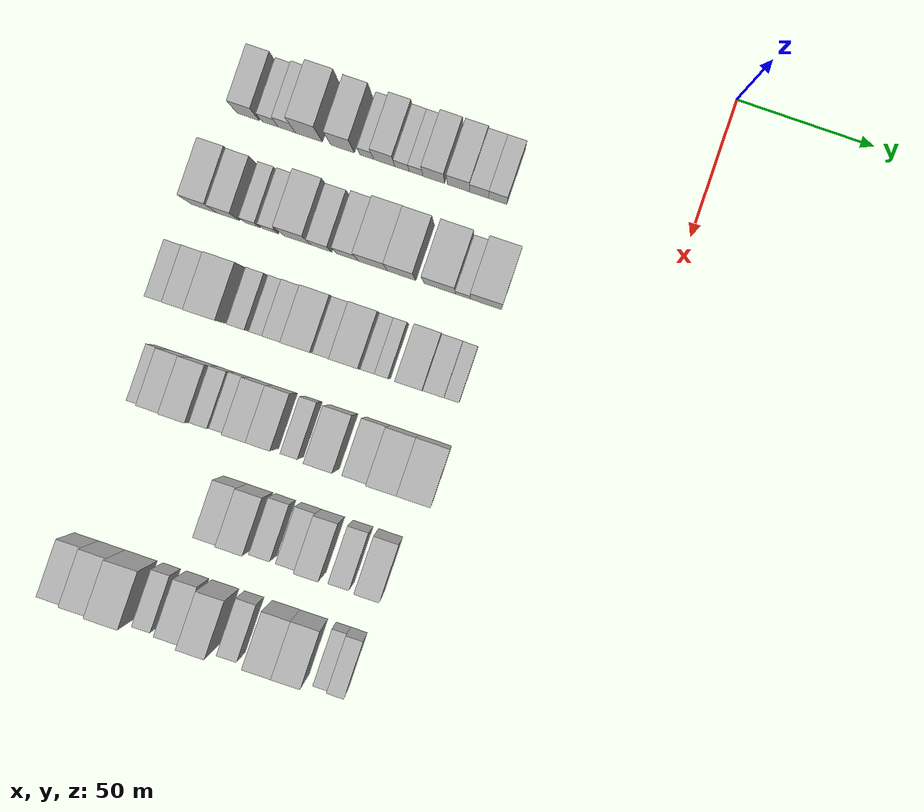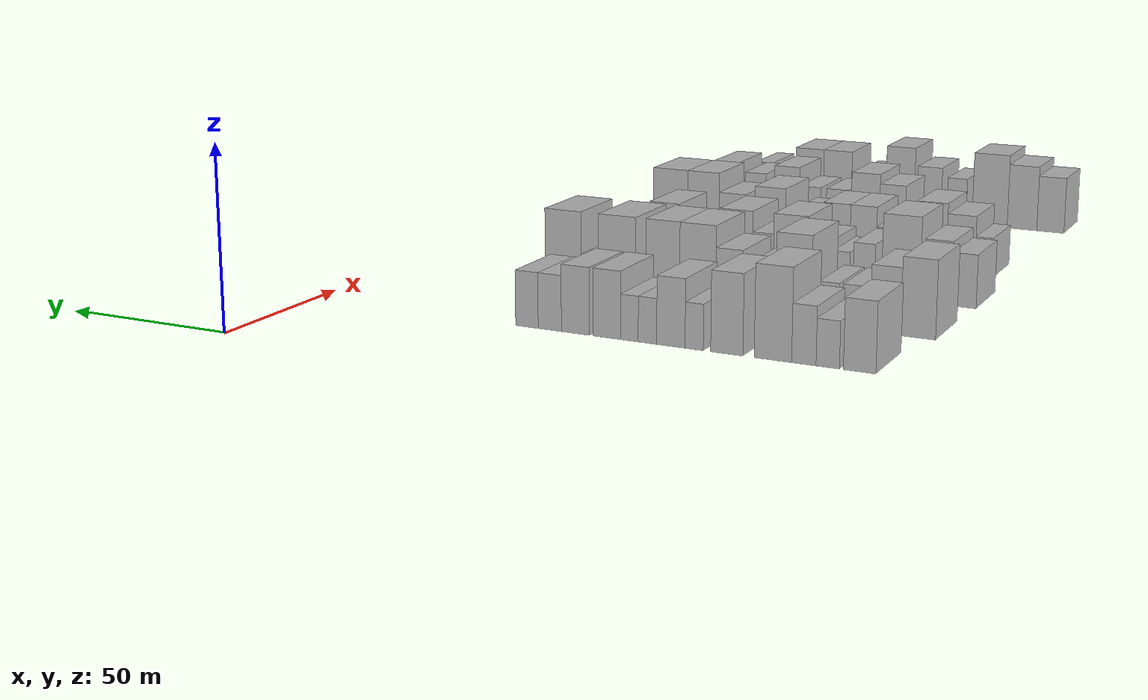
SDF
<sdf version="1.6">
 <world name="default">
  <model name="building_45">
   <static>1</static>
   <pose>50.0000 -158.2272 0 0.000000 0.000000 0.000000</pose>
   <link name="link">
    <pose>0 0 9.00 0 0 0</pose>
    <collision name="collision"><geometry><box><size>20.0000 8.1649 18.0000</size></box></geometry></collision>
    <visual name="visual">
     <cast_shadows>0</cast_shadows>
     <geometry><box><size>20.0000 8.1649 18.0000</size></box></geometry>
     <material>
      <script>
       <uri>model://HANNAS_wall/materials/scripts</uri>
       <uri>model://HANNAS_wall/materials/textures</uri>
       <name>vrc/HANNAS_wall</name>
      </script>
     </material>
    </visual>
   </link>
  </model>
  <model name="building_46">
   <static>1</static>
   <pose>50.0000 -150.1552 0 0.000000 0.000000 0.000000</pose>
   <link name="link">
    <pose>0 0 6.00 0 0 0</pose>
    <collision name="collision"><geometry><box><size>20.0000 5.9791 12.0000</size></box></geometry></collision>
    <visual name="visual">
     <cast_shadows>0</cast_shadows>
     <geometry><box><size>20.0000 5.9791 12.0000</size></box></geometry>
     <material>
      <script>
       <uri>model://HANNAS_wall/materials/scripts</uri>
       <uri>model://HANNAS_wall/materials/textures</uri>
       <name>vrc/HANNAS_wall</name>
      </script>
     </material>
    </visual>
   </link>
  </model>
  <model name="building_47">
   <static>1</static>
   <pose>50.0000 -144.0159 0 0.000000 0.000000 0.000000</pose>
   <link name="link">
    <pose>0 0 7.50 0 0 0</pose>
    <collision name="collision"><geometry><box><size>20.0000 6.2995 15.0000</size></box></geometry></collision>
    <visual name="visual">
     <cast_shadows>0</cast_shadows>
     <geometry><box><size>20.0000 6.2995 15.0000</size></box></geometry>
     <material>
      <script>
       <uri>model://HANNAS_wall/materials/scripts</uri>
       <uri>model://HANNAS_wall/materials/textures</uri>
       <name>vrc/HANNAS_wall</name>
      </script>
     </material>
    </visual>
   </link>
  </model>
  <model name="building_48">
   <static>1</static>
   <pose>50.0000 -135.9513 0 0.000000 0.000000 0.000000</pose>
   <link name="link">
    <pose>0 0 12.00 0 0 0</pose>
    <collision name="collision"><geometry><box><size>20.0000 9.8298 24.0000</size></box></geometry></collision>
    <visual name="visual">
     <cast_shadows>0</cast_shadows>
     <geometry><box><size>20.0000 9.8298 24.0000</size></box></geometry>
     <material>
      <script>
       <uri>model://HANNAS_wall/materials/scripts</uri>
       <uri>model://HANNAS_wall/materials/textures</uri>
       <name>vrc/HANNAS_wall</name>
      </script>
     </material>
    </visual>
   </link>
  </model>
  <model name="building_49">
   <static>1</static>
   <pose>50.0000 -123.6992 0 0.000000 0.000000 0.000000</pose>
   <link name="link">
    <pose>0 0 10.50 0 0 0</pose>
    <collision name="collision"><geometry><box><size>20.0000 8.6744 21.0000</size></box></geometry></collision>
    <visual name="visual">
     <cast_shadows>0</cast_shadows>
     <geometry><box><size>20.0000 8.6744 21.0000</size></box></geometry>
     <material>
      <script>
       <uri>model://HANNAS_wall/materials/scripts</uri>
       <uri>model://HANNAS_wall/materials/textures</uri>
       <name>vrc/HANNAS_wall</name>
      </script>
     </material>
    </visual>
   </link>
  </model>
  <model name="building_50">
   <static>1</static>
   <pose>50.0000 -114.8754 0 0.000000 0.000000 0.000000</pose>
   <link name="link">
    <pose>0 0 6.00 0 0 0</pose>
    <collision name="collision"><geometry><box><size>20.0000 4.9731 12.0000</size></box></geometry></collision>
    <visual name="visual">
     <cast_shadows>0</cast_shadows>
     <geometry><box><size>20.0000 4.9731 12.0000</size></box></geometry>
     <material>
      <script>
       <uri>model://HANNAS_wall/materials/scripts</uri>
       <uri>model://HANNAS_wall/materials/textures</uri>
       <name>vrc/HANNAS_wall</name>
      </script>
     </material>
    </visual>
   </link>
  </model>
  <model name="building_51">
   <static>1</static>
   <pose>50.0000 -108.4652 0 0.000000 0.000000 0.000000</pose>
   <link name="link">
    <pose>0 0 9.00 0 0 0</pose>
    <collision name="collision"><geometry><box><size>20.0000 7.8473 18.0000</size></box></geometry></collision>
    <visual name="visual">
     <cast_shadows>0</cast_shadows>
     <geometry><box><size>20.0000 7.8473 18.0000</size></box></geometry>
     <material>
      <script>
       <uri>model://HANNAS_wall/materials/scripts</uri>
       <uri>model://HANNAS_wall/materials/textures</uri>
       <name>vrc/HANNAS_wall</name>
      </script>
     </material>
    </visual>
   </link>
  </model>
  <model name="building_52">
   <static>1</static>
   <pose>50.0000 -101.9487 0 0.000000 0.000000 0.000000</pose>
   <link name="link">
    <pose>0 0 6.00 0 0 0</pose>
    <collision name="collision"><geometry><box><size>20.0000 5.1858 12.0000</size></box></geometry></collision>
    <visual name="visual">
     <cast_shadows>0</cast_shadows>
     <geometry><box><size>20.0000 5.1858 12.0000</size></box></geometry>
     <material>
      <script>
       <uri>model://HANNAS_wall/materials/scripts</uri>
       <uri>model://HANNAS_wall/materials/textures</uri>
       <name>vrc/HANNAS_wall</name>
      </script>
     </material>
    </visual>
   </link>
  </model>
  <model name="building_53">
   <static>1</static>
   <pose>50.0000 -96.8588 0 0.000000 0.000000 0.000000</pose>
   <link name="link">
    <pose>0 0 6.00 0 0 0</pose>
    <collision name="collision"><geometry><box><size>20.0000 4.9940 12.0000</size></box></geometry></collision>
    <visual name="visual">
     <cast_shadows>0</cast_shadows>
     <geometry><box><size>20.0000 4.9940 12.0000</size></box></geometry>
     <material>
      <script>
       <uri>model://HANNAS_wall/materials/scripts</uri>
       <uri>model://HANNAS_wall/materials/textures</uri>
       <name>vrc/HANNAS_wall</name>
      </script>
     </material>
    </visual>
   </link>
  </model>
  <model name="building_54">
   <static>1</static>
   <pose>50.0000 -90.4018 0 0.000000 0.000000 0.000000</pose>
   <link name="link">
    <pose>0 0 9.00 0 0 0</pose>
    <collision name="collision"><geometry><box><size>20.0000 7.9199 18.0000</size></box></geometry></collision>
    <visual name="visual">
     <cast_shadows>0</cast_shadows>
     <geometry><box><size>20.0000 7.9199 18.0000</size></box></geometry>
     <material>
      <script>
       <uri>model://HANNAS_wall/materials/scripts</uri>
       <uri>model://HANNAS_wall/materials/textures</uri>
       <name>vrc/HANNAS_wall</name>
      </script>
     </material>
    </visual>
   </link>
  </model>
  <model name="building_55">
   <static>1</static>
   <pose>50.0000 -81.3770 0 0.000000 0.000000 0.000000</pose>
   <link name="link">
    <pose>0 0 9.00 0 0 0</pose>
    <collision name="collision"><geometry><box><size>20.0000 8.1297 18.0000</size></box></geometry></collision>
    <visual name="visual">
     <cast_shadows>0</cast_shadows>
     <geometry><box><size>20.0000 8.1297 18.0000</size></box></geometry>
     <material>
      <script>
       <uri>model://HANNAS_wall/materials/scripts</uri>
       <uri>model://HANNAS_wall/materials/textures</uri>
       <name>vrc/HANNAS_wall</name>
      </script>
     </material>
    </visual>
   </link>
  </model>
  <model name="building_56">
   <static>1</static>
   <pose>50.0000 -73.8856 0 0.000000 0.000000 0.000000</pose>
   <link name="link">
    <pose>0 0 7.50 0 0 0</pose>
    <collision name="collision"><geometry><box><size>20.0000 6.8532 15.0000</size></box></geometry></collision>
    <visual name="visual">
     <cast_shadows>0</cast_shadows>
     <geometry><box><size>20.0000 6.8532 15.0000</size></box></geometry>
     <material>
      <script>
       <uri>model://HANNAS_wall/materials/scripts</uri>
       <uri>model://HANNAS_wall/materials/textures</uri>
       <name>vrc/HANNAS_wall</name>
      </script>
     </material>
    </visual>
   </link>
  </model>
  <model name="building_57">
   <static>1</static>
   <pose>50.0000 -67.1089 0 0.000000 0.000000 0.000000</pose>
   <link name="link">
    <pose>0 0 7.50 0 0 0</pose>
    <collision name="collision"><geometry><box><size>20.0000 6.7001 15.0000</size></box></geometry></collision>
    <visual name="visual">
     <cast_shadows>0</cast_shadows>
     <geometry><box><size>20.0000 6.7001 15.0000</size></box></geometry>
     <material>
      <script>
       <uri>model://HANNAS_wall/materials/scripts</uri>
       <uri>model://HANNAS_wall/materials/textures</uri>
       <name>vrc/HANNAS_wall</name>
      </script>
     </material>
    </visual>
   </link>
  </model>
  <model name="building_173">
   <static>1</static>
   <pose>85.0000 -162.1228 0 0.000000 0.000000 0.000000</pose>
   <link name="link">
    <pose>0 0 10.50 0 0 0</pose>
    <collision name="collision"><geometry><box><size>20.0000 9.2548 21.0000</size></box></geometry></collision>
    <visual name="visual">
     <cast_shadows>0</cast_shadows>
     <geometry><box><size>20.0000 9.2548 21.0000</size></box></geometry>
     <material>
      <script>
       <uri>model://HANNAS_wall/materials/scripts</uri>
       <uri>model://HANNAS_wall/materials/textures</uri>
       <name>vrc/HANNAS_wall</name>
      </script>
     </material>
    </visual>
   </link>
  </model>
  <model name="building_174">
   <static>1</static>
   <pose>85.0000 -153.4054 0 0.000000 0.000000 0.000000</pose>
   <link name="link">
    <pose>0 0 9.00 0 0 0</pose>
    <collision name="collision"><geometry><box><size>20.0000 8.1799 18.0000</size></box></geometry></collision>
    <visual name="visual">
     <cast_shadows>0</cast_shadows>
     <geometry><box><size>20.0000 8.1799 18.0000</size></box></geometry>
     <material>
      <script>
       <uri>model://HANNAS_wall/materials/scripts</uri>
       <uri>model://HANNAS_wall/materials/textures</uri>
       <name>vrc/HANNAS_wall</name>
      </script>
     </material>
    </visual>
   </link>
  </model>
  <model name="building_175">
   <static>1</static>
   <pose>85.0000 -144.5409 0 0.000000 0.000000 0.000000</pose>
   <link name="link">
    <pose>0 0 6.00 0 0 0</pose>
    <collision name="collision"><geometry><box><size>20.0000 5.5491 12.0000</size></box></geometry></collision>
    <visual name="visual">
     <cast_shadows>0</cast_shadows>
     <geometry><box><size>20.0000 5.5491 12.0000</size></box></geometry>
     <material>
      <script>
       <uri>model://HANNAS_wall/materials/scripts</uri>
       <uri>model://HANNAS_wall/materials/textures</uri>
       <name>vrc/HANNAS_wall</name>
      </script>
     </material>
    </visual>
   </link>
  </model>
  <model name="building_176">
   <static>1</static>
   <pose>85.0000 -137.9410 0 0.000000 0.000000 0.000000</pose>
   <link name="link">
    <pose>0 0 6.00 0 0 0</pose>
    <collision name="collision"><geometry><box><size>20.0000 5.6507 12.0000</size></box></geometry></collision>
    <visual name="visual">
     <cast_shadows>0</cast_shadows>
     <geometry><box><size>20.0000 5.6507 12.0000</size></box></geometry>
     <material>
      <script>
       <uri>model://HANNAS_wall/materials/scripts</uri>
       <uri>model://HANNAS_wall/materials/textures</uri>
       <name>vrc/HANNAS_wall</name>
      </script>
     </material>
    </visual>
   </link>
  </model>
  <model name="building_177">
   <static>1</static>
   <pose>85.0000 -128.0843 0 0.000000 0.000000 0.000000</pose>
   <link name="link">
    <pose>0 0 12.00 0 0 0</pose>
    <collision name="collision"><geometry><box><size>20.0000 10.0627 24.0000</size></box></geometry></collision>
    <visual name="visual">
     <cast_shadows>0</cast_shadows>
     <geometry><box><size>20.0000 10.0627 24.0000</size></box></geometry>
     <material>
      <script>
       <uri>model://HANNAS_wall/materials/scripts</uri>
       <uri>model://HANNAS_wall/materials/textures</uri>
       <name>vrc/HANNAS_wall</name>
      </script>
     </material>
    </visual>
   </link>
  </model>
  <model name="building_178">
   <static>1</static>
   <pose>85.0000 -119.3592 0 0.000000 0.000000 0.000000</pose>
   <link name="link">
    <pose>0 0 7.50 0 0 0</pose>
    <collision name="collision"><geometry><box><size>20.0000 7.3874 15.0000</size></box></geometry></collision>
    <visual name="visual">
     <cast_shadows>0</cast_shadows>
     <geometry><box><size>20.0000 7.3874 15.0000</size></box></geometry>
     <material>
      <script>
       <uri>model://HANNAS_wall/materials/scripts</uri>
       <uri>model://HANNAS_wall/materials/textures</uri>
       <name>vrc/HANNAS_wall</name>
      </script>
     </material>
    </visual>
   </link>
  </model>
  <model name="building_179">
   <static>1</static>
   <pose>85.0000 -109.7303 0 0.000000 0.000000 0.000000</pose>
   <link name="link">
    <pose>0 0 9.00 0 0 0</pose>
    <collision name="collision"><geometry><box><size>20.0000 7.8703 18.0000</size></box></geometry></collision>
    <visual name="visual">
     <cast_shadows>0</cast_shadows>
     <geometry><box><size>20.0000 7.8703 18.0000</size></box></geometry>
     <material>
      <script>
       <uri>model://HANNAS_wall/materials/scripts</uri>
       <uri>model://HANNAS_wall/materials/textures</uri>
       <name>vrc/HANNAS_wall</name>
      </script>
     </material>
    </visual>
   </link>
  </model>
  <model name="building_180">
   <static>1</static>
   <pose>85.0000 -100.4943 0 0.000000 0.000000 0.000000</pose>
   <link name="link">
    <pose>0 0 12.00 0 0 0</pose>
    <collision name="collision"><geometry><box><size>20.0000 10.6018 24.0000</size></box></geometry></collision>
    <visual name="visual">
     <cast_shadows>0</cast_shadows>
     <geometry><box><size>20.0000 10.6018 24.0000</size></box></geometry>
     <material>
      <script>
       <uri>model://HANNAS_wall/materials/scripts</uri>
       <uri>model://HANNAS_wall/materials/textures</uri>
       <name>vrc/HANNAS_wall</name>
      </script>
     </material>
    </visual>
   </link>
  </model>
  <model name="building_181">
   <static>1</static>
   <pose>85.0000 -90.1026 0 0.000000 0.000000 0.000000</pose>
   <link name="link">
    <pose>0 0 12.00 0 0 0</pose>
    <collision name="collision"><geometry><box><size>20.0000 10.1818 24.0000</size></box></geometry></collision>
    <visual name="visual">
     <cast_shadows>0</cast_shadows>
     <geometry><box><size>20.0000 10.1818 24.0000</size></box></geometry>
     <material>
      <script>
       <uri>model://HANNAS_wall/materials/scripts</uri>
       <uri>model://HANNAS_wall/materials/textures</uri>
       <name>vrc/HANNAS_wall</name>
      </script>
     </material>
    </visual>
   </link>
  </model>
  <model name="building_182">
   <static>1</static>
   <pose>85.0000 -76.2773 0 0.000000 0.000000 0.000000</pose>
   <link name="link">
    <pose>0 0 12.00 0 0 0</pose>
    <collision name="collision"><geometry><box><size>20.0000 11.4687 24.0000</size></box></geometry></collision>
    <visual name="visual">
     <cast_shadows>0</cast_shadows>
     <geometry><box><size>20.0000 11.4687 24.0000</size></box></geometry>
     <material>
      <script>
       <uri>model://HANNAS_wall/materials/scripts</uri>
       <uri>model://HANNAS_wall/materials/textures</uri>
       <name>vrc/HANNAS_wall</name>
      </script>
     </material>
    </visual>
   </link>
  </model>
  <model name="building_183">
   <static>1</static>
   <pose>85.0000 -67.8249 0 0.000000 0.000000 0.000000</pose>
   <link name="link">
    <pose>0 0 6.00 0 0 0</pose>
    <collision name="collision"><geometry><box><size>20.0000 5.4361 12.0000</size></box></geometry></collision>
    <visual name="visual">
     <cast_shadows>0</cast_shadows>
     <geometry><box><size>20.0000 5.4361 12.0000</size></box></geometry>
     <material>
      <script>
       <uri>model://HANNAS_wall/materials/scripts</uri>
       <uri>model://HANNAS_wall/materials/textures</uri>
       <name>vrc/HANNAS_wall</name>
      </script>
     </material>
    </visual>
   </link>
  </model>
  <model name="building_184">
   <static>1</static>
   <pose>85.0000 -59.4655 0 0.000000 0.000000 0.000000</pose>
   <link name="link">
    <pose>0 0 12.00 0 0 0</pose>
    <collision name="collision"><geometry><box><size>20.0000 11.2828 24.0000</size></box></geometry></collision>
    <visual name="visual">
     <cast_shadows>0</cast_shadows>
     <geometry><box><size>20.0000 11.2828 24.0000</size></box></geometry>
     <material>
      <script>
       <uri>model://HANNAS_wall/materials/scripts</uri>
       <uri>model://HANNAS_wall/materials/textures</uri>
       <name>vrc/HANNAS_wall</name>
      </script>
     </material>
    </visual>
   </link>
  </model>
  <model name="building_301">
   <static>1</static>
   <pose>120.0000 -164.4219 0 0.000000 0.000000 0.000000</pose>
   <link name="link">
    <pose>0 0 7.50 0 0 0</pose>
    <collision name="collision"><geometry><box><size>20.0000 6.8444 15.0000</size></box></geometry></collision>
    <visual name="visual">
     <cast_shadows>0</cast_shadows>
     <geometry><box><size>20.0000 6.8444 15.0000</size></box></geometry>
     <material>
      <script>
       <uri>model://HANNAS_wall/materials/scripts</uri>
       <uri>model://HANNAS_wall/materials/textures</uri>
       <name>vrc/HANNAS_wall</name>
      </script>
     </material>
    </visual>
   </link>
  </model>
  <model name="building_302">
   <static>1</static>
   <pose>120.0000 -156.9995 0 0.000000 0.000000 0.000000</pose>
   <link name="link">
    <pose>0 0 9.00 0 0 0</pose>
    <collision name="collision"><geometry><box><size>20.0000 8.0004 18.0000</size></box></geometry></collision>
    <visual name="visual">
     <cast_shadows>0</cast_shadows>
     <geometry><box><size>20.0000 8.0004 18.0000</size></box></geometry>
     <material>
      <script>
       <uri>model://HANNAS_wall/materials/scripts</uri>
       <uri>model://HANNAS_wall/materials/textures</uri>
       <name>vrc/HANNAS_wall</name>
      </script>
     </material>
    </visual>
   </link>
  </model>
  <model name="building_303">
   <static>1</static>
   <pose>120.0000 -146.4794 0 0.000000 0.000000 0.000000</pose>
   <link name="link">
    <pose>0 0 12.00 0 0 0</pose>
    <collision name="collision"><geometry><box><size>20.0000 11.0399 24.0000</size></box></geometry></collision>
    <visual name="visual">
     <cast_shadows>0</cast_shadows>
     <geometry><box><size>20.0000 11.0399 24.0000</size></box></geometry>
     <material>
      <script>
       <uri>model://HANNAS_wall/materials/scripts</uri>
       <uri>model://HANNAS_wall/materials/textures</uri>
       <name>vrc/HANNAS_wall</name>
      </script>
     </material>
    </visual>
   </link>
  </model>
  <model name="building_304">
   <static>1</static>
   <pose>120.0000 -135.8184 0 0.000000 0.000000 0.000000</pose>
   <link name="link">
    <pose>0 0 7.50 0 0 0</pose>
    <collision name="collision"><geometry><box><size>20.0000 6.2820 15.0000</size></box></geometry></collision>
    <visual name="visual">
     <cast_shadows>0</cast_shadows>
     <geometry><box><size>20.0000 6.2820 15.0000</size></box></geometry>
     <material>
      <script>
       <uri>model://HANNAS_wall/materials/scripts</uri>
       <uri>model://HANNAS_wall/materials/textures</uri>
       <name>vrc/HANNAS_wall</name>
      </script>
     </material>
    </visual>
   </link>
  </model>
  <model name="building_305">
   <static>1</static>
   <pose>120.0000 -129.1154 0 0.000000 0.000000 0.000000</pose>
   <link name="link">
    <pose>0 0 6.00 0 0 0</pose>
    <collision name="collision"><geometry><box><size>20.0000 5.1241 12.0000</size></box></geometry></collision>
    <visual name="visual">
     <cast_shadows>0</cast_shadows>
     <geometry><box><size>20.0000 5.1241 12.0000</size></box></geometry>
     <material>
      <script>
       <uri>model://HANNAS_wall/materials/scripts</uri>
       <uri>model://HANNAS_wall/materials/textures</uri>
       <name>vrc/HANNAS_wall</name>
      </script>
     </material>
    </visual>
   </link>
  </model>
  <model name="building_306">
   <static>1</static>
   <pose>120.0000 -122.8383 0 0.000000 0.000000 0.000000</pose>
   <link name="link">
    <pose>0 0 7.50 0 0 0</pose>
    <collision name="collision"><geometry><box><size>20.0000 7.4299 15.0000</size></box></geometry></collision>
    <visual name="visual">
     <cast_shadows>0</cast_shadows>
     <geometry><box><size>20.0000 7.4299 15.0000</size></box></geometry>
     <material>
      <script>
       <uri>model://HANNAS_wall/materials/scripts</uri>
       <uri>model://HANNAS_wall/materials/textures</uri>
       <name>vrc/HANNAS_wall</name>
      </script>
     </material>
    </visual>
   </link>
  </model>
  <model name="building_307">
   <static>1</static>
   <pose>120.0000 -113.9442 0 0.000000 0.000000 0.000000</pose>
   <link name="link">
    <pose>0 0 10.50 0 0 0</pose>
    <collision name="collision"><geometry><box><size>20.0000 10.3584 21.0000</size></box></geometry></collision>
    <visual name="visual">
     <cast_shadows>0</cast_shadows>
     <geometry><box><size>20.0000 10.3584 21.0000</size></box></geometry>
     <material>
      <script>
       <uri>model://HANNAS_wall/materials/scripts</uri>
       <uri>model://HANNAS_wall/materials/textures</uri>
       <name>vrc/HANNAS_wall</name>
      </script>
     </material>
    </visual>
   </link>
  </model>
  <model name="building_308">
   <static>1</static>
   <pose>120.0000 -105.5362 0 0.000000 0.000000 0.000000</pose>
   <link name="link">
    <pose>0 0 7.50 0 0 0</pose>
    <collision name="collision"><geometry><box><size>20.0000 6.4575 15.0000</size></box></geometry></collision>
    <visual name="visual">
     <cast_shadows>0</cast_shadows>
     <geometry><box><size>20.0000 6.4575 15.0000</size></box></geometry>
     <material>
      <script>
       <uri>model://HANNAS_wall/materials/scripts</uri>
       <uri>model://HANNAS_wall/materials/textures</uri>
       <name>vrc/HANNAS_wall</name>
      </script>
     </material>
    </visual>
   </link>
  </model>
  <model name="building_309">
   <static>1</static>
   <pose>120.0000 -97.2433 0 0.000000 0.000000 0.000000</pose>
   <link name="link">
    <pose>0 0 10.50 0 0 0</pose>
    <collision name="collision"><geometry><box><size>20.0000 10.1284 21.0000</size></box></geometry></collision>
    <visual name="visual">
     <cast_shadows>0</cast_shadows>
     <geometry><box><size>20.0000 10.1284 21.0000</size></box></geometry>
     <material>
      <script>
       <uri>model://HANNAS_wall/materials/scripts</uri>
       <uri>model://HANNAS_wall/materials/textures</uri>
       <name>vrc/HANNAS_wall</name>
      </script>
     </material>
    </visual>
   </link>
  </model>
  <model name="building_310">
   <static>1</static>
   <pose>120.0000 -89.7154 0 0.000000 0.000000 0.000000</pose>
   <link name="link">
    <pose>0 0 6.00 0 0 0</pose>
    <collision name="collision"><geometry><box><size>20.0000 4.9274 12.0000</size></box></geometry></collision>
    <visual name="visual">
     <cast_shadows>0</cast_shadows>
     <geometry><box><size>20.0000 4.9274 12.0000</size></box></geometry>
     <material>
      <script>
       <uri>model://HANNAS_wall/materials/scripts</uri>
       <uri>model://HANNAS_wall/materials/textures</uri>
       <name>vrc/HANNAS_wall</name>
      </script>
     </material>
    </visual>
   </link>
  </model>
  <model name="building_311">
   <static>1</static>
   <pose>120.0000 -84.8326 0 0.000000 0.000000 0.000000</pose>
   <link name="link">
    <pose>0 0 6.00 0 0 0</pose>
    <collision name="collision"><geometry><box><size>20.0000 4.8383 12.0000</size></box></geometry></collision>
    <visual name="visual">
     <cast_shadows>0</cast_shadows>
     <geometry><box><size>20.0000 4.8383 12.0000</size></box></geometry>
     <material>
      <script>
       <uri>model://HANNAS_wall/materials/scripts</uri>
       <uri>model://HANNAS_wall/materials/textures</uri>
       <name>vrc/HANNAS_wall</name>
      </script>
     </material>
    </visual>
   </link>
  </model>
  <model name="building_312">
   <static>1</static>
   <pose>120.0000 -74.6800 0 0.000000 0.000000 0.000000</pose>
   <link name="link">
    <pose>0 0 10.50 0 0 0</pose>
    <collision name="collision"><geometry><box><size>20.0000 9.4668 21.0000</size></box></geometry></collision>
    <visual name="visual">
     <cast_shadows>0</cast_shadows>
     <geometry><box><size>20.0000 9.4668 21.0000</size></box></geometry>
     <material>
      <script>
       <uri>model://HANNAS_wall/materials/scripts</uri>
       <uri>model://HANNAS_wall/materials/textures</uri>
       <name>vrc/HANNAS_wall</name>
      </script>
     </material>
    </visual>
   </link>
  </model>
  <model name="building_313">
   <static>1</static>
   <pose>120.0000 -66.2406 0 0.000000 0.000000 0.000000</pose>
   <link name="link">
    <pose>0 0 7.50 0 0 0</pose>
    <collision name="collision"><geometry><box><size>20.0000 7.4121 15.0000</size></box></geometry></collision>
    <visual name="visual">
     <cast_shadows>0</cast_shadows>
     <geometry><box><size>20.0000 7.4121 15.0000</size></box></geometry>
     <material>
      <script>
       <uri>model://HANNAS_wall/materials/scripts</uri>
       <uri>model://HANNAS_wall/materials/textures</uri>
       <name>vrc/HANNAS_wall</name>
      </script>
     </material>
    </visual>
   </link>
  </model>
  <model name="building_314">
   <static>1</static>
   <pose>120.0000 -59.8944 0 0.000000 0.000000 0.000000</pose>
   <link name="link">
    <pose>0 0 6.00 0 0 0</pose>
    <collision name="collision"><geometry><box><size>20.0000 5.2803 12.0000</size></box></geometry></collision>
    <visual name="visual">
     <cast_shadows>0</cast_shadows>
     <geometry><box><size>20.0000 5.2803 12.0000</size></box></geometry>
     <material>
      <script>
       <uri>model://HANNAS_wall/materials/scripts</uri>
       <uri>model://HANNAS_wall/materials/textures</uri>
       <name>vrc/HANNAS_wall</name>
      </script>
     </material>
    </visual>
   </link>
  </model>
  <model name="building_440">
   <static>1</static>
   <pose>155.0000 -160.4737 0 0.000000 0.000000 0.000000</pose>
   <link name="link">
    <pose>0 0 6.00 0 0 0</pose>
    <collision name="collision"><geometry><box><size>20.0000 5.1148 12.0000</size></box></geometry></collision>
    <visual name="visual">
     <cast_shadows>0</cast_shadows>
     <geometry><box><size>20.0000 5.1148 12.0000</size></box></geometry>
     <material>
      <script>
       <uri>model://HANNAS_wall/materials/scripts</uri>
       <uri>model://HANNAS_wall/materials/textures</uri>
       <name>vrc/HANNAS_wall</name>
      </script>
     </material>
    </visual>
   </link>
  </model>
  <model name="building_441">
   <static>1</static>
   <pose>155.0000 -153.6519 0 0.000000 0.000000 0.000000</pose>
   <link name="link">
    <pose>0 0 9.00 0 0 0</pose>
    <collision name="collision"><geometry><box><size>20.0000 8.5289 18.0000</size></box></geometry></collision>
    <visual name="visual">
     <cast_shadows>0</cast_shadows>
     <geometry><box><size>20.0000 8.5289 18.0000</size></box></geometry>
     <material>
      <script>
       <uri>model://HANNAS_wall/materials/scripts</uri>
       <uri>model://HANNAS_wall/materials/textures</uri>
       <name>vrc/HANNAS_wall</name>
      </script>
     </material>
    </visual>
   </link>
  </model>
  <model name="building_442">
   <static>1</static>
   <pose>155.0000 -144.7277 0 0.000000 0.000000 0.000000</pose>
   <link name="link">
    <pose>0 0 10.50 0 0 0</pose>
    <collision name="collision"><geometry><box><size>20.0000 9.3194 21.0000</size></box></geometry></collision>
    <visual name="visual">
     <cast_shadows>0</cast_shadows>
     <geometry><box><size>20.0000 9.3194 21.0000</size></box></geometry>
     <material>
      <script>
       <uri>model://HANNAS_wall/materials/scripts</uri>
       <uri>model://HANNAS_wall/materials/textures</uri>
       <name>vrc/HANNAS_wall</name>
      </script>
     </material>
    </visual>
   </link>
  </model>
  <model name="building_443">
   <static>1</static>
   <pose>155.0000 -136.9377 0 0.000000 0.000000 0.000000</pose>
   <link name="link">
    <pose>0 0 7.50 0 0 0</pose>
    <collision name="collision"><geometry><box><size>20.0000 6.2606 15.0000</size></box></geometry></collision>
    <visual name="visual">
     <cast_shadows>0</cast_shadows>
     <geometry><box><size>20.0000 6.2606 15.0000</size></box></geometry>
     <material>
      <script>
       <uri>model://HANNAS_wall/materials/scripts</uri>
       <uri>model://HANNAS_wall/materials/textures</uri>
       <name>vrc/HANNAS_wall</name>
      </script>
     </material>
    </visual>
   </link>
  </model>
  <model name="building_444">
   <static>1</static>
   <pose>155.0000 -130.8951 0 0.000000 0.000000 0.000000</pose>
   <link name="link">
    <pose>0 0 6.00 0 0 0</pose>
    <collision name="collision"><geometry><box><size>20.0000 5.8245 12.0000</size></box></geometry></collision>
    <visual name="visual">
     <cast_shadows>0</cast_shadows>
     <geometry><box><size>20.0000 5.8245 12.0000</size></box></geometry>
     <material>
      <script>
       <uri>model://HANNAS_wall/materials/scripts</uri>
       <uri>model://HANNAS_wall/materials/textures</uri>
       <name>vrc/HANNAS_wall</name>
      </script>
     </material>
    </visual>
   </link>
  </model>
  <model name="building_445">
   <static>1</static>
   <pose>155.0000 -123.8632 0 0.000000 0.000000 0.000000</pose>
   <link name="link">
    <pose>0 0 9.00 0 0 0</pose>
    <collision name="collision"><geometry><box><size>20.0000 8.2392 18.0000</size></box></geometry></collision>
    <visual name="visual">
     <cast_shadows>0</cast_shadows>
     <geometry><box><size>20.0000 8.2392 18.0000</size></box></geometry>
     <material>
      <script>
       <uri>model://HANNAS_wall/materials/scripts</uri>
       <uri>model://HANNAS_wall/materials/textures</uri>
       <name>vrc/HANNAS_wall</name>
      </script>
     </material>
    </visual>
   </link>
  </model>
  <model name="building_446">
   <static>1</static>
   <pose>155.0000 -115.4369 0 0.000000 0.000000 0.000000</pose>
   <link name="link">
    <pose>0 0 9.00 0 0 0</pose>
    <collision name="collision"><geometry><box><size>20.0000 8.6135 18.0000</size></box></geometry></collision>
    <visual name="visual">
     <cast_shadows>0</cast_shadows>
     <geometry><box><size>20.0000 8.6135 18.0000</size></box></geometry>
     <material>
      <script>
       <uri>model://HANNAS_wall/materials/scripts</uri>
       <uri>model://HANNAS_wall/materials/textures</uri>
       <name>vrc/HANNAS_wall</name>
      </script>
     </material>
    </visual>
   </link>
  </model>
  <model name="building_447">
   <static>1</static>
   <pose>155.0000 -105.0960 0 0.000000 0.000000 0.000000</pose>
   <link name="link">
    <pose>0 0 7.50 0 0 0</pose>
    <collision name="collision"><geometry><box><size>20.0000 6.0682 15.0000</size></box></geometry></collision>
    <visual name="visual">
     <cast_shadows>0</cast_shadows>
     <geometry><box><size>20.0000 6.0682 15.0000</size></box></geometry>
     <material>
      <script>
       <uri>model://HANNAS_wall/materials/scripts</uri>
       <uri>model://HANNAS_wall/materials/textures</uri>
       <name>vrc/HANNAS_wall</name>
      </script>
     </material>
    </visual>
   </link>
  </model>
  <model name="building_448">
   <static>1</static>
   <pose>155.0000 -94.0655 0 0.000000 0.000000 0.000000</pose>
   <link name="link">
    <pose>0 0 10.50 0 0 0</pose>
    <collision name="collision"><geometry><box><size>20.0000 9.9927 21.0000</size></box></geometry></collision>
    <visual name="visual">
     <cast_shadows>0</cast_shadows>
     <geometry><box><size>20.0000 9.9927 21.0000</size></box></geometry>
     <material>
      <script>
       <uri>model://HANNAS_wall/materials/scripts</uri>
       <uri>model://HANNAS_wall/materials/textures</uri>
       <name>vrc/HANNAS_wall</name>
      </script>
     </material>
    </visual>
   </link>
  </model>
  <model name="building_449">
   <static>1</static>
   <pose>155.0000 -81.6289 0 0.000000 0.000000 0.000000</pose>
   <link name="link">
    <pose>0 0 9.00 0 0 0</pose>
    <collision name="collision"><geometry><box><size>20.0000 8.8806 18.0000</size></box></geometry></collision>
    <visual name="visual">
     <cast_shadows>0</cast_shadows>
     <geometry><box><size>20.0000 8.8806 18.0000</size></box></geometry>
     <material>
      <script>
       <uri>model://HANNAS_wall/materials/scripts</uri>
       <uri>model://HANNAS_wall/materials/textures</uri>
       <name>vrc/HANNAS_wall</name>
      </script>
     </material>
    </visual>
   </link>
  </model>
  <model name="building_450">
   <static>1</static>
   <pose>155.0000 -71.9312 0 0.000000 0.000000 0.000000</pose>
   <link name="link">
    <pose>0 0 12.00 0 0 0</pose>
    <collision name="collision"><geometry><box><size>20.0000 10.5148 24.0000</size></box></geometry></collision>
    <visual name="visual">
     <cast_shadows>0</cast_shadows>
     <geometry><box><size>20.0000 10.5148 24.0000</size></box></geometry>
     <material>
      <script>
       <uri>model://HANNAS_wall/materials/scripts</uri>
       <uri>model://HANNAS_wall/materials/textures</uri>
       <name>vrc/HANNAS_wall</name>
      </script>
     </material>
    </visual>
   </link>
  </model>
  <model name="building_451">
   <static>1</static>
   <pose>155.0000 -60.8012 0 0.000000 0.000000 0.000000</pose>
   <link name="link">
    <pose>0 0 12.00 0 0 0</pose>
    <collision name="collision"><geometry><box><size>20.0000 11.7452 24.0000</size></box></geometry></collision>
    <visual name="visual">
     <cast_shadows>0</cast_shadows>
     <geometry><box><size>20.0000 11.7452 24.0000</size></box></geometry>
     <material>
      <script>
       <uri>model://HANNAS_wall/materials/scripts</uri>
       <uri>model://HANNAS_wall/materials/textures</uri>
       <name>vrc/HANNAS_wall</name>
      </script>
     </material>
    </visual>
   </link>
  </model>
  <model name="building_558">
   <static>1</static>
   <pose>190.0000 -121.7657 0 0.000000 0.000000 0.000000</pose>
   <link name="link">
    <pose>0 0 9.00 0 0 0</pose>
    <collision name="collision"><geometry><box><size>20.0000 8.4408 18.0000</size></box></geometry></collision>
    <visual name="visual">
     <cast_shadows>0</cast_shadows>
     <geometry><box><size>20.0000 8.4408 18.0000</size></box></geometry>
     <material>
      <script>
       <uri>model://HANNAS_wall/materials/scripts</uri>
       <uri>model://HANNAS_wall/materials/textures</uri>
       <name>vrc/HANNAS_wall</name>
      </script>
     </material>
    </visual>
   </link>
  </model>
  <model name="building_559">
   <static>1</static>
   <pose>190.0000 -112.8300 0 0.000000 0.000000 0.000000</pose>
   <link name="link">
    <pose>0 0 10.50 0 0 0</pose>
    <collision name="collision"><geometry><box><size>20.0000 9.4305 21.0000</size></box></geometry></collision>
    <visual name="visual">
     <cast_shadows>0</cast_shadows>
     <geometry><box><size>20.0000 9.4305 21.0000</size></box></geometry>
     <material>
      <script>
       <uri>model://HANNAS_wall/materials/scripts</uri>
       <uri>model://HANNAS_wall/materials/textures</uri>
       <name>vrc/HANNAS_wall</name>
      </script>
     </material>
    </visual>
   </link>
  </model>
  <model name="building_560">
   <static>1</static>
   <pose>190.0000 -103.4301 0 0.000000 0.000000 0.000000</pose>
   <link name="link">
    <pose>0 0 7.50 0 0 0</pose>
    <collision name="collision"><geometry><box><size>20.0000 7.3693 15.0000</size></box></geometry></collision>
    <visual name="visual">
     <cast_shadows>0</cast_shadows>
     <geometry><box><size>20.0000 7.3693 15.0000</size></box></geometry>
     <material>
      <script>
       <uri>model://HANNAS_wall/materials/scripts</uri>
       <uri>model://HANNAS_wall/materials/textures</uri>
       <name>vrc/HANNAS_wall</name>
      </script>
     </material>
    </visual>
   </link>
  </model>
  <model name="building_561">
   <static>1</static>
   <pose>190.0000 -94.1134 0 0.000000 0.000000 0.000000</pose>
   <link name="link">
    <pose>0 0 7.50 0 0 0</pose>
    <collision name="collision"><geometry><box><size>20.0000 7.2643 15.0000</size></box></geometry></collision>
    <visual name="visual">
     <cast_shadows>0</cast_shadows>
     <geometry><box><size>20.0000 7.2643 15.0000</size></box></geometry>
     <material>
      <script>
       <uri>model://HANNAS_wall/materials/scripts</uri>
       <uri>model://HANNAS_wall/materials/textures</uri>
       <name>vrc/HANNAS_wall</name>
      </script>
     </material>
    </visual>
   </link>
  </model>
  <model name="building_562">
   <static>1</static>
   <pose>190.0000 -86.1994 0 0.000000 0.000000 0.000000</pose>
   <link name="link">
    <pose>0 0 10.50 0 0 0</pose>
    <collision name="collision"><geometry><box><size>20.0000 8.5637 21.0000</size></box></geometry></collision>
    <visual name="visual">
     <cast_shadows>0</cast_shadows>
     <geometry><box><size>20.0000 8.5637 21.0000</size></box></geometry>
     <material>
      <script>
       <uri>model://HANNAS_wall/materials/scripts</uri>
       <uri>model://HANNAS_wall/materials/textures</uri>
       <name>vrc/HANNAS_wall</name>
      </script>
     </material>
    </visual>
   </link>
  </model>
  <model name="building_563">
   <static>1</static>
   <pose>190.0000 -75.2576 0 0.000000 0.000000 0.000000</pose>
   <link name="link">
    <pose>0 0 9.00 0 0 0</pose>
    <collision name="collision"><geometry><box><size>20.0000 7.3199 18.0000</size></box></geometry></collision>
    <visual name="visual">
     <cast_shadows>0</cast_shadows>
     <geometry><box><size>20.0000 7.3199 18.0000</size></box></geometry>
     <material>
      <script>
       <uri>model://HANNAS_wall/materials/scripts</uri>
       <uri>model://HANNAS_wall/materials/textures</uri>
       <name>vrc/HANNAS_wall</name>
      </script>
     </material>
    </visual>
   </link>
  </model>
  <model name="building_564">
   <static>1</static>
   <pose>190.0000 -65.1901 0 0.000000 0.000000 0.000000</pose>
   <link name="link">
    <pose>0 0 10.50 0 0 0</pose>
    <collision name="collision"><geometry><box><size>20.0000 8.8150 21.0000</size></box></geometry></collision>
    <visual name="visual">
     <cast_shadows>0</cast_shadows>
     <geometry><box><size>20.0000 8.8150 21.0000</size></box></geometry>
     <material>
      <script>
       <uri>model://HANNAS_wall/materials/scripts</uri>
       <uri>model://HANNAS_wall/materials/textures</uri>
       <name>vrc/HANNAS_wall</name>
      </script>
     </material>
    </visual>
   </link>
  </model>
  <model name="building_678">
   <static>1</static>
   <pose>225.0000 -164.0167 0 0.000000 0.000000 0.000000</pose>
   <link name="link">
    <pose>0 0 9.00 0 0 0</pose>
    <collision name="collision"><geometry><box><size>20.0000 8.7739 18.0000</size></box></geometry></collision>
    <visual name="visual">
     <cast_shadows>0</cast_shadows>
     <geometry><box><size>20.0000 8.7739 18.0000</size></box></geometry>
     <material>
      <script>
       <uri>model://HANNAS_wall/materials/scripts</uri>
       <uri>model://HANNAS_wall/materials/textures</uri>
       <name>vrc/HANNAS_wall</name>
      </script>
     </material>
    </visual>
   </link>
  </model>
  <model name="building_679">
   <static>1</static>
   <pose>225.0000 -154.7726 0 0.000000 0.000000 0.000000</pose>
   <link name="link">
    <pose>0 0 10.50 0 0 0</pose>
    <collision name="collision"><geometry><box><size>20.0000 9.7143 21.0000</size></box></geometry></collision>
    <visual name="visual">
     <cast_shadows>0</cast_shadows>
     <geometry><box><size>20.0000 9.7143 21.0000</size></box></geometry>
     <material>
      <script>
       <uri>model://HANNAS_wall/materials/scripts</uri>
       <uri>model://HANNAS_wall/materials/textures</uri>
       <name>vrc/HANNAS_wall</name>
      </script>
     </material>
    </visual>
   </link>
  </model>
  <model name="building_680">
   <static>1</static>
   <pose>225.0000 -144.0377 0 0.000000 0.000000 0.000000</pose>
   <link name="link">
    <pose>0 0 12.00 0 0 0</pose>
    <collision name="collision"><geometry><box><size>20.0000 11.7556 24.0000</size></box></geometry></collision>
    <visual name="visual">
     <cast_shadows>0</cast_shadows>
     <geometry><box><size>20.0000 11.7556 24.0000</size></box></geometry>
     <material>
      <script>
       <uri>model://HANNAS_wall/materials/scripts</uri>
       <uri>model://HANNAS_wall/materials/textures</uri>
       <name>vrc/HANNAS_wall</name>
      </script>
     </material>
    </visual>
   </link>
  </model>
  <model name="building_681">
   <static>1</static>
   <pose>225.0000 -132.8941 0 0.000000 0.000000 0.000000</pose>
   <link name="link">
    <pose>0 0 7.50 0 0 0</pose>
    <collision name="collision"><geometry><box><size>20.0000 6.5316 15.0000</size></box></geometry></collision>
    <visual name="visual">
     <cast_shadows>0</cast_shadows>
     <geometry><box><size>20.0000 6.5316 15.0000</size></box></geometry>
     <material>
      <script>
       <uri>model://HANNAS_wall/materials/scripts</uri>
       <uri>model://HANNAS_wall/materials/textures</uri>
       <name>vrc/HANNAS_wall</name>
      </script>
     </material>
    </visual>
   </link>
  </model>
  <model name="building_682">
   <static>1</static>
   <pose>225.0000 -123.4652 0 0.000000 0.000000 0.000000</pose>
   <link name="link">
    <pose>0 0 9.00 0 0 0</pose>
    <collision name="collision"><geometry><box><size>20.0000 8.3263 18.0000</size></box></geometry></collision>
    <visual name="visual">
     <cast_shadows>0</cast_shadows>
     <geometry><box><size>20.0000 8.3263 18.0000</size></box></geometry>
     <material>
      <script>
       <uri>model://HANNAS_wall/materials/scripts</uri>
       <uri>model://HANNAS_wall/materials/textures</uri>
       <name>vrc/HANNAS_wall</name>
      </script>
     </material>
    </visual>
   </link>
  </model>
  <model name="building_683">
   <static>1</static>
   <pose>225.0000 -113.3730 0 0.000000 0.000000 0.000000</pose>
   <link name="link">
    <pose>0 0 12.00 0 0 0</pose>
    <collision name="collision"><geometry><box><size>20.0000 9.8581 24.0000</size></box></geometry></collision>
    <visual name="visual">
     <cast_shadows>0</cast_shadows>
     <geometry><box><size>20.0000 9.8581 24.0000</size></box></geometry>
     <material>
      <script>
       <uri>model://HANNAS_wall/materials/scripts</uri>
       <uri>model://HANNAS_wall/materials/textures</uri>
       <name>vrc/HANNAS_wall</name>
      </script>
     </material>
    </visual>
   </link>
  </model>
  <model name="building_684">
   <static>1</static>
   <pose>225.0000 -102.8912 0 0.000000 0.000000 0.000000</pose>
   <link name="link">
    <pose>0 0 7.50 0 0 0</pose>
    <collision name="collision"><geometry><box><size>20.0000 7.1055 15.0000</size></box></geometry></collision>
    <visual name="visual">
     <cast_shadows>0</cast_shadows>
     <geometry><box><size>20.0000 7.1055 15.0000</size></box></geometry>
     <material>
      <script>
       <uri>model://HANNAS_wall/materials/scripts</uri>
       <uri>model://HANNAS_wall/materials/textures</uri>
       <name>vrc/HANNAS_wall</name>
      </script>
     </material>
    </visual>
   </link>
  </model>
  <model name="building_685">
   <static>1</static>
   <pose>225.0000 -91.3064 0 0.000000 0.000000 0.000000</pose>
   <link name="link">
    <pose>0 0 10.50 0 0 0</pose>
    <collision name="collision"><geometry><box><size>20.0000 10.0640 21.0000</size></box></geometry></collision>
    <visual name="visual">
     <cast_shadows>0</cast_shadows>
     <geometry><box><size>20.0000 10.0640 21.0000</size></box></geometry>
     <material>
      <script>
       <uri>model://HANNAS_wall/materials/scripts</uri>
       <uri>model://HANNAS_wall/materials/textures</uri>
       <name>vrc/HANNAS_wall</name>
      </script>
     </material>
    </visual>
   </link>
  </model>
  <model name="building_686">
   <static>1</static>
   <pose>225.0000 -81.2020 0 0.000000 0.000000 0.000000</pose>
   <link name="link">
    <pose>0 0 10.50 0 0 0</pose>
    <collision name="collision"><geometry><box><size>20.0000 10.1447 21.0000</size></box></geometry></collision>
    <visual name="visual">
     <cast_shadows>0</cast_shadows>
     <geometry><box><size>20.0000 10.1447 21.0000</size></box></geometry>
     <material>
      <script>
       <uri>model://HANNAS_wall/materials/scripts</uri>
       <uri>model://HANNAS_wall/materials/textures</uri>
       <name>vrc/HANNAS_wall</name>
      </script>
     </material>
    </visual>
   </link>
  </model>
  <model name="building_687">
   <static>1</static>
   <pose>225.0000 -70.5194 0 0.000000 0.000000 0.000000</pose>
   <link name="link">
    <pose>0 0 6.00 0 0 0</pose>
    <collision name="collision"><geometry><box><size>20.0000 5.2205 12.0000</size></box></geometry></collision>
    <visual name="visual">
     <cast_shadows>0</cast_shadows>
     <geometry><box><size>20.0000 5.2205 12.0000</size></box></geometry>
     <material>
      <script>
       <uri>model://HANNAS_wall/materials/scripts</uri>
       <uri>model://HANNAS_wall/materials/textures</uri>
       <name>vrc/HANNAS_wall</name>
      </script>
     </material>
    </visual>
   </link>
  </model>
  <model name="building_688">
   <static>1</static>
   <pose>225.0000 -64.8419 0 0.000000 0.000000 0.000000</pose>
   <link name="link">
    <pose>0 0 7.50 0 0 0</pose>
    <collision name="collision"><geometry><box><size>20.0000 6.1345 15.0000</size></box></geometry></collision>
    <visual name="visual">
     <cast_shadows>0</cast_shadows>
     <geometry><box><size>20.0000 6.1345 15.0000</size></box></geometry>
     <material>
      <script>
       <uri>model://HANNAS_wall/materials/scripts</uri>
       <uri>model://HANNAS_wall/materials/textures</uri>
       <name>vrc/HANNAS_wall</name>
      </script>
     </material>
    </visual>
   </link>
  </model>
 </world>
</sdf>
